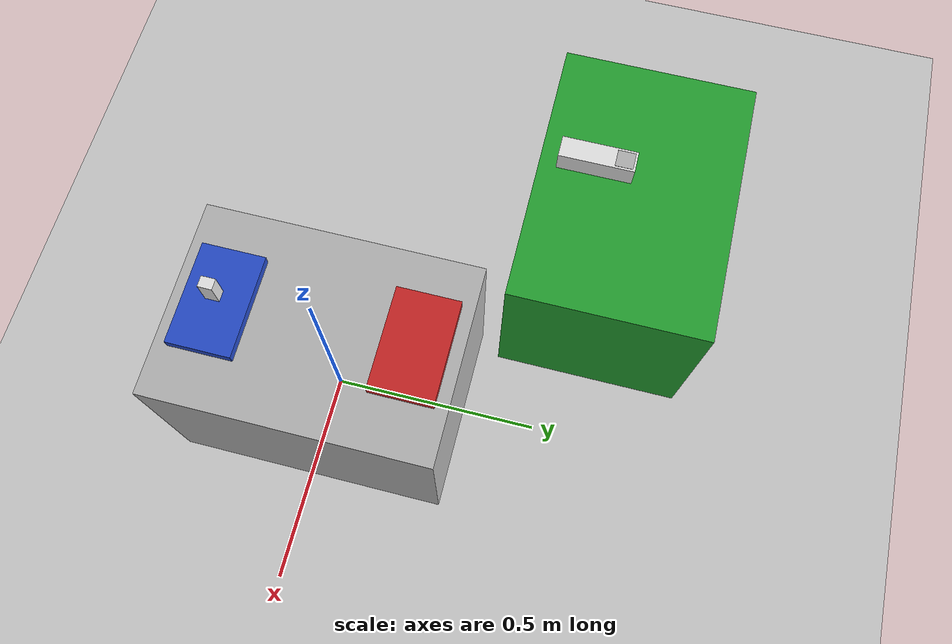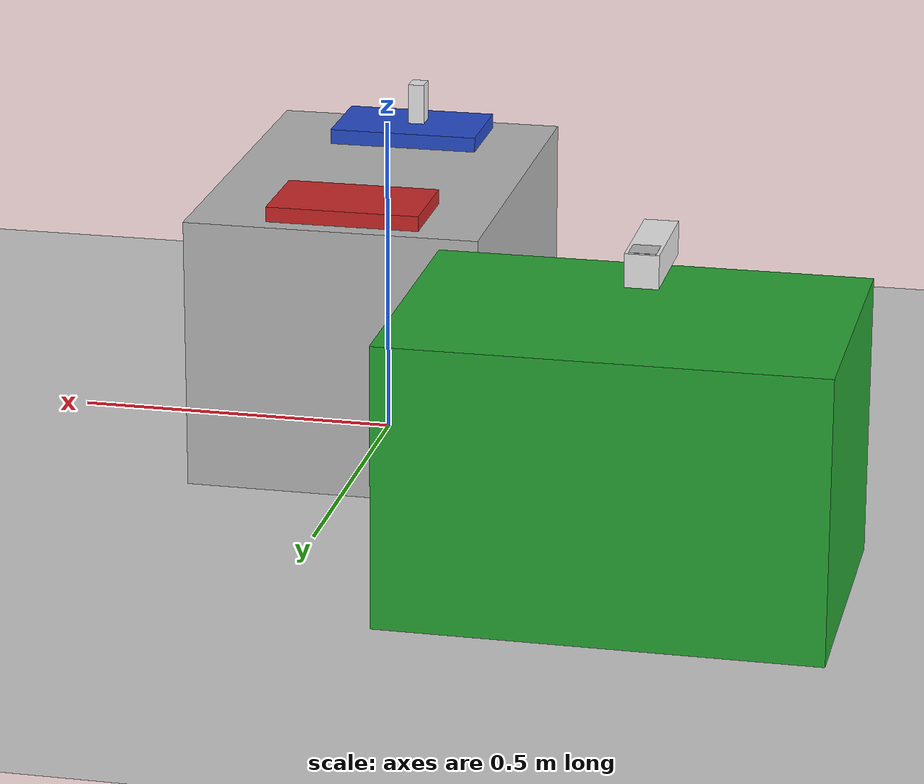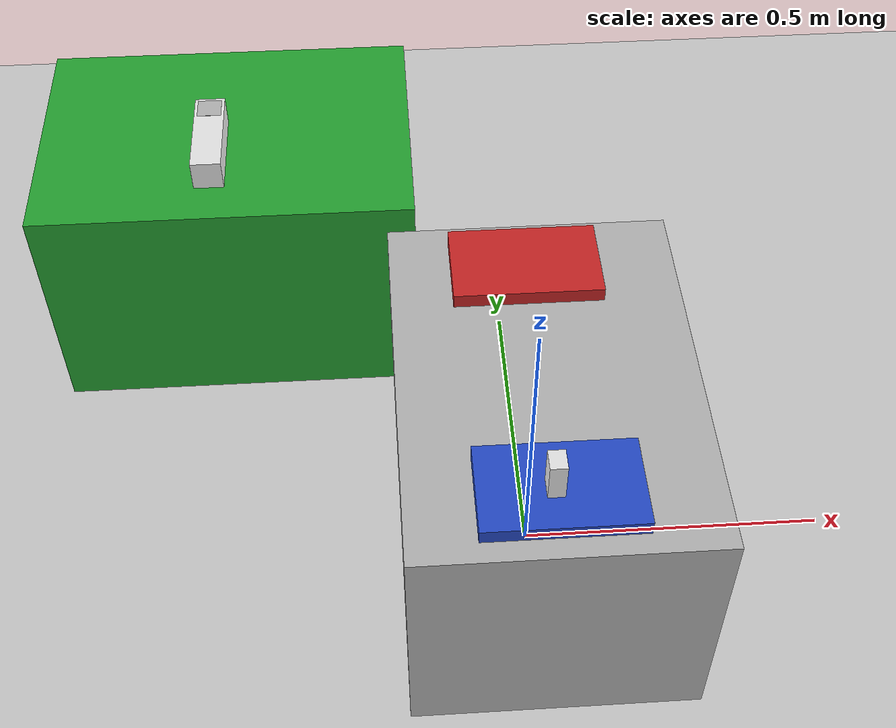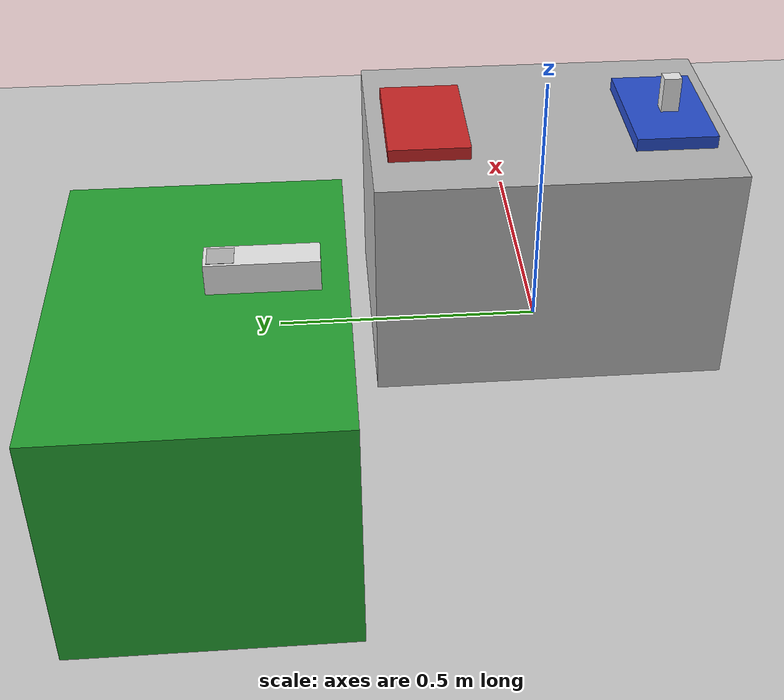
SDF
<?xml version="1.0" ?>
<sdf version="1.6">
  <world name="panda_pick_and_place">
    <!--A global light source-->
    <include>
      <uri>model://sun</uri>
    </include>
    <!--A ground plane-->
    <include>
      <uri>model://ground_plane</uri>
    </include>
    <!--A Table-->
    <include>
      <uri>model://table</uri>
      <pose>0.016428 0.000584 0.0 0 -0 0</pose>
      <static>1</static>
    </include>
    <!--A pick tray-->
    <include>
      <uri>model://pick_tray</uri>
      <pose>0.008578 -0.215704 0.419773 0 -0 -0</pose>
      <static>1</static> <!--Hot Fix to prevent drifting see #206-->
    </include>
    <!--A place tray-->
    <include>
      <uri>model://place_tray</uri>
      <pose>0.004103 0.219654 0.419764 0 -0 -0</pose>
      <static>1</static> <!--Hot Fix to prevent drifting see #206-->
    </include>
    <!--A stone-->
    <include>
      <uri>model://stone</uri>
      <pose>0.000286 -0.221972 0.475172 0 -0 -0</pose>
    </include>
    <!--An object to grasp-->
    <include>
      <uri>model://object</uri>
      <pose>-0.5 0.50 0.475172 0 0 1.57</pose>
    </include>
  </world>
</sdf>

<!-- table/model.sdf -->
<sdf version='1.6'>
  <model name='table'>
    <link name='link'>
      <pose>0 0 0.2099115 0 -0 0</pose>
      <inertial>
        <pose>0 0 0 0 -0 0</pose>
        <mass>10</mass>
        <inertia>
          <ixx>0.166667</ixx>
          <ixy>0</ixy>
          <ixz>0</ixz>
          <iyy>0.166667</iyy>
          <iyz>0</iyz>
          <izz>0.166667</izz>
        </inertia>
      </inertial>
      <self_collide>0</self_collide>
      <enable_wind>0</enable_wind>
      <kinematic>0</kinematic>
      <visual name='visual'>
        <pose>0 0 0 0 -0 0</pose>
        <geometry>
          <box>
            <size>0.453157 0.642049 0.419823</size>
          </box>
        </geometry>
        <material>
          <script>
            <ambient>0.1 0.1 0.1 1</ambient>
            <diffuse>0.1 0.1 0.2 1</diffuse>
            <specular>0 0 0 0</specular>
            <emissive>0 0 0 1</emissive>
          </script>
          <shader type='pixel'/>
        </material>
        <lighting>true</lighting>
        <pose>0 0 0 0 -0 0</pose>
        <transparency>0</transparency>
        <cast_shadows>false</cast_shadows>
      </visual>
      <collision name='collision'>
        <laser_retro>0</laser_retro>
        <max_contacts>10</max_contacts>
        <pose>0 0 0 0 -0 0</pose>
        <geometry>
          <box>
            <size>0.453157 0.642049 0.419823</size>
          </box>
        </geometry>
        <surface>
          <friction>
            <ode>
              <mu>1</mu>
              <mu2>1</mu2>
              <fdir1>0 0 0</fdir1>
              <slip1>0</slip1>
              <slip2>0</slip2>
            </ode>
            <torsional>
              <coefficient>1</coefficient>
              <patch_radius>0</patch_radius>
              <surface_radius>0</surface_radius>
              <use_patch_radius>1</use_patch_radius>
              <ode>
                <slip>0</slip>
              </ode>
            </torsional>
          </friction>
          <bounce>
            <restitution_coefficient>0</restitution_coefficient>
            <threshold>1e+06</threshold>
          </bounce>
          <contact>
            <collide_without_contact>0</collide_without_contact>
            <collide_without_contact_bitmask>1</collide_without_contact_bitmask>
            <collide_bitmask>1</collide_bitmask>
            <ode>
              <soft_cfm>0</soft_cfm>
              <soft_erp>0.2</soft_erp>
              <kp>1e+13</kp>
              <kd>1</kd>
              <max_vel>0.01</max_vel>
              <min_depth>0</min_depth>
            </ode>
            <bullet>
              <split_impulse>1</split_impulse>
              <split_impulse_penetration_threshold>-0.01</split_impulse_penetration_threshold>
              <soft_cfm>0</soft_cfm>
              <soft_erp>0.2</soft_erp>
              <kp>1e+13</kp>
              <kd>1</kd>
            </bullet>
          </contact>
        </surface>
      </collision>
    </link>
    <static>1</static>
    <allow_auto_disable>1</allow_auto_disable>

    <link name='link2'>
      <pose>-0.5 0.6 0.2099115 0 -0 1.57</pose>
      <inertial>
        <pose>0 0 0 0 -0 0</pose>
        <mass>10</mass>
        <inertia>
          <ixx>0.166667</ixx>
          <ixy>0</ixy>
          <ixz>0</ixz>
          <iyy>0.166667</iyy>
          <iyz>0</iyz>
          <izz>0.166667</izz>
        </inertia>
      </inertial>
      <self_collide>0</self_collide>
      <enable_wind>0</enable_wind>
      <kinematic>0</kinematic>
      <visual name='visual'>
        <pose>0 0 0 0 -0 0</pose>
        <geometry>
          <box>
            <size>0.453157 0.642049 0.419823</size>
          </box>
        </geometry>
        <material>
          <script>
            <name>Gazebo/Green</name>
            <uri>file://media/materials/scripts/gazebo.material</uri>
          </script>
          <shader type='pixel'/>
        </material>
        <lighting>true</lighting>
        <pose>0 0 0 0 -0 0</pose>
        <transparency>0</transparency>
        <cast_shadows>false</cast_shadows>
      </visual>
      <collision name='collision'>
        <laser_retro>0</laser_retro>
        <max_contacts>10</max_contacts>
        <pose>0 0 0 0 -0 0</pose>
        <geometry>
          <box>
            <size>0.453157 0.642049 0.419823</size>
          </box>
        </geometry>
        <surface>
          <friction>
            <ode>
              <mu>1</mu>
              <mu2>1</mu2>
              <fdir1>0 0 0</fdir1>
              <slip1>0</slip1>
              <slip2>0</slip2>
            </ode>
            <torsional>
              <coefficient>1</coefficient>
              <patch_radius>0</patch_radius>
              <surface_radius>0</surface_radius>
              <use_patch_radius>1</use_patch_radius>
              <ode>
                <slip>0</slip>
              </ode>
            </torsional>
          </friction>
          <bounce>
            <restitution_coefficient>0</restitution_coefficient>
            <threshold>1e+06</threshold>
          </bounce>
          <contact>
            <collide_without_contact>0</collide_without_contact>
            <collide_without_contact_bitmask>1</collide_without_contact_bitmask>
            <collide_bitmask>1</collide_bitmask>
            <ode>
              <soft_cfm>0</soft_cfm>
              <soft_erp>0.2</soft_erp>
              <kp>1e+13</kp>
              <kd>1</kd>
              <max_vel>0.01</max_vel>
              <min_depth>0</min_depth>
            </ode>
            <bullet>
              <split_impulse>1</split_impulse>
              <split_impulse_penetration_threshold>-0.01</split_impulse_penetration_threshold>
              <soft_cfm>0</soft_cfm>
              <soft_erp>0.2</soft_erp>
              <kp>1e+13</kp>
              <kd>1</kd>
            </bullet>
          </contact>
        </surface>
      </collision>
    </link>
    <static>1</static>
    <allow_auto_disable>1</allow_auto_disable>
  </model>
</sdf>

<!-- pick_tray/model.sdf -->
<sdf version='1.6'>
  <model name='pick_tray'>
    <link name='link'>
      <pose>0.0 0.0 0.011674 0 -0 0</pose>
      <inertial>
        <!--NOTE: Uses hard wood density (i.e 960 kg/m^3) to calculate the mass
        see https://qtimber.daf.qld.gov.au/guides/wood-density-and-hardness
        -->
        <mass>0.7634836885523328</mass>
        <inertia>
          <ixx>0.00137101</ixx>
          <ixy>0</ixy>
          <ixz>0</ixz>
          <iyy>0.00354935</iyy>
          <iyz>0</iyz>
          <izz>0.00485098</izz>
        </inertia>
        <pose>0 0 0 0 -0 0</pose>
      </inertial>
      <self_collide>0</self_collide>
      <enable_wind>0</enable_wind>
      <kinematic>0</kinematic>
      <pose>0 0 0 0 -0 0</pose>
      <visual name='visual'>
        <geometry>
          <box>
            <size>0.235035 0.144926 0.023348</size>
          </box>
        </geometry>
        <material>
          <script>
            <name>Gazebo/Blue</name>
            <uri>file://media/materials/scripts/gazebo.material</uri>
          </script>
          <shader type='pixel'/>
        </material>
        <pose>0 0 0 0 -0 0</pose>
        <transparency>0</transparency>
        <cast_shadows>false</cast_shadows>
      </visual>
      <collision name='collision'>
        <laser_retro>0</laser_retro>
        <max_contacts>10</max_contacts>
        <pose>0 0 0 0 -0 0</pose>
        <geometry>
          <box>
            <size>0.235035 0.144926 0.023348</size>
          </box>
        </geometry>
        <surface>
          <!--NOTE: Uses dynamic friction of wood on a brick surface
          see https://www.engineeringtoolbox.com/friction-coefficients-d_778.html
          -->
          <friction>
            <ode>
              <mu>0.6</mu>
              <mu2>0.6</mu2>
              <fdir1>0 0 0</fdir1>
              <slip1>0</slip1>
              <slip2>0</slip2>
            </ode>
            <torsional>
              <coefficient>1</coefficient>
              <patch_radius>0</patch_radius>
              <surface_radius>0</surface_radius>
              <use_patch_radius>1</use_patch_radius>
              <ode>
                <slip>0</slip>
              </ode>
            </torsional>
          </friction>
          <bounce>
            <restitution_coefficient>0</restitution_coefficient>
            <threshold>1e+06</threshold>
          </bounce>
          <contact>
            <collide_without_contact>0</collide_without_contact>
            <collide_without_contact_bitmask>1</collide_without_contact_bitmask>
            <collide_bitmask>1</collide_bitmask>
            <ode>
              <soft_cfm>0</soft_cfm>
              <soft_erp>0.2</soft_erp>
              <kp>1e+13</kp>
              <kd>1</kd>
              <max_vel>0.01</max_vel>
              <min_depth>0</min_depth>
            </ode>
            <bullet>
              <split_impulse>1</split_impulse>
              <split_impulse_penetration_threshold>-0.01</split_impulse_penetration_threshold>
              <soft_cfm>0</soft_cfm>
              <soft_erp>0.2</soft_erp>
              <kp>1e+13</kp>
              <kd>1</kd>
            </bullet>
          </contact>
        </surface>
      </collision>
    </link>
    <static>0</static>
    <allow_auto_disable>1</allow_auto_disable>
  </model>
</sdf>

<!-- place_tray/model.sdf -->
<sdf version='1.6'>
  <model name='place_tray'>
    <link name='link'>
      <pose>0.0 0.0 0.011674 0 -0 0</pose>
      <inertial>
        <!--NOTE: Uses hard wood density (i.e 960 kg/m^3) to calculate the mass
        see https://qtimber.daf.qld.gov.au/guides/wood-density-and-hardness
        -->
        <mass>0.7634836885523328</mass>
        <inertia>
          <ixx>0.00137101</ixx>
          <ixy>0</ixy>
          <ixz>0</ixz>
          <iyy>0.00354935</iyy>
          <iyz>0</iyz>
          <izz>0.00485098</izz>
        </inertia>
        <pose>0 0 0 0 -0 0</pose>
      </inertial>
      <self_collide>0</self_collide>
      <enable_wind>0</enable_wind>
      <kinematic>0</kinematic>
      <pose>0 0 0 0 -0 0</pose>
      <visual name='visual'>
        <geometry>
          <box>
            <size>0.235035 0.144926 0.023348</size>
          </box>
        </geometry>
        <material>
          <script>
            <name>Gazebo/Red</name>
            <uri>file://media/materials/scripts/gazebo.material</uri>
          </script>
          <shader type='pixel'/>
        </material>
        <pose>0 0 0 0 -0 0</pose>
        <transparency>0</transparency>
        <cast_shadows>false</cast_shadows>
      </visual>
      <collision name='collision'>
        <laser_retro>0</laser_retro>
        <max_contacts>10</max_contacts>
        <pose>0 0 0 0 -0 0</pose>
        <geometry>
          <box>
            <size>0.235035 0.144926 0.023348</size>
          </box>
        </geometry>
        <surface>
          <!--NOTE: Uses dynamic friction of wood on a brick surface
          see https://www.engineeringtoolbox.com/friction-coefficients-d_778.html
          -->
          <friction>
            <ode>
              <mu>0.6</mu>
              <mu2>0.6</mu2>
              <fdir1>0 0 0</fdir1>
              <slip1>0</slip1>
              <slip2>0</slip2>
            </ode>
            <torsional>
              <coefficient>1</coefficient>
              <patch_radius>0</patch_radius>
              <surface_radius>0</surface_radius>
              <use_patch_radius>1</use_patch_radius>
              <ode>
                <slip>0</slip>
              </ode>
            </torsional>
          </friction>
          <bounce>
            <restitution_coefficient>0</restitution_coefficient>
            <threshold>1e+06</threshold>
          </bounce>
          <contact>
            <collide_without_contact>0</collide_without_contact>
            <collide_without_contact_bitmask>1</collide_without_contact_bitmask>
            <collide_bitmask>1</collide_bitmask>
            <ode>
              <soft_cfm>0</soft_cfm>
              <soft_erp>0.2</soft_erp>
              <kp>1e+13</kp>
              <kd>1</kd>
              <max_vel>0.01</max_vel>
              <min_depth>0</min_depth>
            </ode>
            <bullet>
              <split_impulse>1</split_impulse>
              <split_impulse_penetration_threshold>-0.01</split_impulse_penetration_threshold>
              <soft_cfm>0</soft_cfm>
              <soft_erp>0.2</soft_erp>
              <kp>1e+13</kp>
              <kd>1</kd>
            </bullet>
          </contact>
        </surface>
      </collision>
    </link>
    <static>0</static>
    <allow_auto_disable>1</allow_auto_disable>
  </model>
</sdf>

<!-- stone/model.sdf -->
<sdf version='1.6'>
  <model name='stone'>
    <link name='link'>
      <pose>0.0 0.0 0.0 0 -0 0</pose>
      <inertial>
        <!--NOTE: Uses limestone density (i.e 2000 kg/m^3) to calculate the mass
        see https://en.wikipedia.org/wiki/Limestone
        -->
        <mass>0.08192</mass>
        <inertia>
          <ixx>0.01</ixx>
          <ixy>0</ixy>
          <ixz>0</ixz>
          <iyy>0.01</iyy>
          <iyz>0</iyz>
          <izz>0.01</izz>
        </inertia>
        <pose>0 0 0 0 -0 0</pose>
      </inertial>
        <self_collide>0</self_collide>
      <kinematic>0</kinematic>
      <enable_wind>0</enable_wind>
      <pose>0 0 0 0 -0 0</pose>
      <visual name='visual'>
        <geometry>
          <box>
            <size>0.025 0.032 0.064</size>
          </box>
        </geometry>
        <material>
          <script>
            <uri>file://media/materials/scripts/gazebo.material</uri>
            <name>Gazebo/White</name>
          </script>
          <shader type='pixel'/>
        </material>
        <pose>0 0 0 0 -0 0</pose>
        <transparency>0</transparency>
        <cast_shadows>false</cast_shadows>
      </visual>
      <collision name='collision'>
        <laser_retro>0</laser_retro>
        <max_contacts>10</max_contacts>
        <pose>0 0 0 0 -0 0</pose>
        <geometry>
          <box>
            <size>0.025 0.032 0.064</size>
          </box>
        </geometry>
        <surface>
          <!--NOTE: Uses dynamic friction of brick on a wood surface
          see https://www.engineeringtoolbox.com/friction-coefficients-d_778.html
          -->
          <friction>
            <ode>
              <mu>0.6</mu>
              <mu2>0.6</mu2>
              <fdir1>0 0 0</fdir1>
              <slip1>0</slip1>
              <slip2>0</slip2>
            </ode>
            <torsional>
              <coefficient>1</coefficient>
              <patch_radius>0</patch_radius>
              <surface_radius>0</surface_radius>
              <use_patch_radius>1</use_patch_radius>
              <ode>
                <slip>0</slip>
              </ode>
            </torsional>
          </friction>
          <bounce>
            <restitution_coefficient>0</restitution_coefficient>
            <threshold>1e+06</threshold>
          </bounce>
          <contact>
            <collide_without_contact>0</collide_without_contact>
            <collide_without_contact_bitmask>1</collide_without_contact_bitmask>
            <collide_bitmask>1</collide_bitmask>
            <ode>
              <soft_cfm>0</soft_cfm>
              <soft_erp>0.2</soft_erp>
              <kp>1e+13</kp>
              <kd>1</kd>
              <max_vel>0</max_vel>
              <min_depth>0.003</min_depth>
            </ode>
            <bullet>
              <split_impulse>1</split_impulse>
              <split_impulse_penetration_threshold>-0.01</split_impulse_penetration_threshold>
              <soft_cfm>0</soft_cfm>
              <soft_erp>0.2</soft_erp>
              <kp>1e+13</kp>
              <kd>1</kd>
            </bullet>
          </contact>
        </surface>
      </collision>
    </link>
    <static>0</static>
    <allow_auto_disable>1</allow_auto_disable>
  </model>
</sdf>

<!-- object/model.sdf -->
<sdf version='1.6'>
  <model name='object'>
    <static>false</static>
    <link name='link'>
      <pose>0.0 0.0 0.0 0 -0 0</pose>
      <inertial>
        <!--NOTE: Uses limestone density (i.e 2000 kg/m^3) to calculate the mass
        see https://en.wikipedia.org/wiki/Limestone
        -->
        <mass>0.08192</mass>
        <inertia>
          <ixx>0.01</ixx>
          <ixy>0</ixy>
          <ixz>0</ixz>
          <iyy>0.01</iyy>
          <iyz>0</iyz>
          <izz>0.01</izz>
        </inertia>
        <pose>0 0 0 0 -0 0</pose>
      </inertial>
        <self_collide>0</self_collide>
      <kinematic>0</kinematic>
      <enable_wind>0</enable_wind>
      <pose>0 0 0 0 -0 0</pose>
      <visual name='visual'>
        <geometry>
          <box>
            <size>0.170 0.05 0.05</size>
          </box>
        </geometry>
        <material>
          <script>
            <uri>file://media/materials/scripts/gazebo.material</uri>
            <name>Gazebo/White</name>
          </script>
          <shader type='pixel'/>
        </material>
        <pose>0 0 0 0 -0 0</pose>
        <transparency>0</transparency>
        <cast_shadows>false</cast_shadows>
      </visual>
      <collision name='collision'>
        <laser_retro>0</laser_retro>
        <max_contacts>10</max_contacts>
        <pose>0 0 0 0 -0 0</pose>
        <geometry>
          <box>
            <size>0.170 0.05 0.05</size>
          </box>
        </geometry>
        <surface>
          <!--NOTE: Uses dynamic friction of brick on a wood surface
          see https://www.engineeringtoolbox.com/friction-coefficients-d_778.html
          -->
          <friction>
            <ode>
              <mu>0.6</mu>
              <mu2>0.6</mu2>
              <fdir1>0 0 0</fdir1>
              <slip1>0</slip1>
              <slip2>0</slip2>
            </ode>
            <torsional>
              <coefficient>1</coefficient>
              <patch_radius>0</patch_radius>
              <surface_radius>0</surface_radius>
              <use_patch_radius>1</use_patch_radius>
              <ode>
                <slip>0</slip>
              </ode>
            </torsional>
          </friction>
          <bounce>
            <restitution_coefficient>0</restitution_coefficient>
            <threshold>1e+06</threshold>
          </bounce>
          <contact>
            <collide_without_contact>0</collide_without_contact>
            <collide_without_contact_bitmask>1</collide_without_contact_bitmask>
            <collide_bitmask>1</collide_bitmask>
            <ode>
              <soft_cfm>0</soft_cfm>
              <soft_erp>0.2</soft_erp>
              <kp>1e+13</kp>
              <kd>1</kd>
              <max_vel>0</max_vel>
              <min_depth>0.003</min_depth>
            </ode>
            <bullet>
              <split_impulse>1</split_impulse>
              <split_impulse_penetration_threshold>-0.01</split_impulse_penetration_threshold>
              <soft_cfm>0</soft_cfm>
              <soft_erp>0.2</soft_erp>
              <kp>1e+13</kp>
              <kd>1</kd>
            </bullet>
          </contact>
        </surface>
      </collision>
    </link>

    <link name='link1'>
      <pose>0.06 0.0 0.025 1.57079632 0.0 0.0</pose>
      <gravity>0</gravity>
      <visual name="visual1">
        <pose>0.0 0.0 0.0 0.0 0.0 0.0</pose>
        <geometry>
          <box>
            <size>0.04 0.001 0.04</size>
          </box>
        </geometry>
        <material>
          <script>
            <name>Gazebo/aruco-123</name>
            <uri>file://media/materials/scripts/aruco.material</uri>
          </script>
        </material>
        <cast_shadows>false</cast_shadows>
      </visual>
      <collision name='collision'>
        <pose>0.0 0.0 0.0 0.0 0.0 0.0</pose>
        <geometry>
          <box>
            <size>0.04 0.001 0.04</size>
          </box>
        </geometry>
      </collision>
    </link>
    <joint type="fixed" name="object_marker_joint">
      <parent>link</parent>
      <child>link1</child>
      <pose>0.0 0.0 0.0 0.0 0.0 0.0</pose>
    </joint>
  </model>
</sdf>
